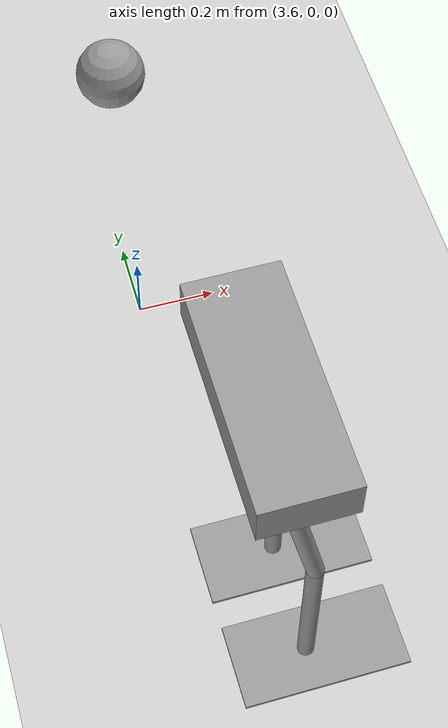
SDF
<sdf version="1.7">
 <world name="default">
  <model name="ground_plane">
   <static>1</static>
   <link name="link">
    <collision name="collision">
     <geometry><plane><normal>0 0 1</normal><size>100 100</size></plane></geometry>
     <surface>
      <contact><collide_bitmask>65535</collide_bitmask></contact>
      <friction><ode><mu>100</mu><mu2>50</mu2></ode></friction>
     </surface>
    </collision>
    <visual name="visual">
     <cast_shadows>0</cast_shadows>
     <geometry><plane><normal>0 0 1</normal><size>100 100</size></plane></geometry>
     <material>
      <script><uri>file://media/materials/scripts/gazebo.material</uri><name>Gazebo/Grey</name></script>
     </material>
    </visual>
   </link>
  </model>
  <model name="HumanoidRobot_clone">
   <link name="link_0">
    <inertial>
     <mass>1</mass>
     <inertia>
      <ixx>0.166667</ixx>
      <ixy>0</ixy>
      <ixz>0</ixz>
      <iyy>0.166667</iyy>
      <iyz>0</iyz>
      <izz>0.166667</izz>
     </inertia>
    </inertial>
    <pose>0.037224 0.016312 1 0 -0 0</pose>
    <visual name="visual">
     <geometry><box><size>0.2 0.5 0.1</size></box></geometry>
     <material>
      <lighting>1</lighting>
      <script><uri>file://media/materials/scripts/gazebo.material</uri><name>Gazebo/Grey</name></script>
      <shader type="pixel"><normal_map>__default__</normal_map></shader>
      <ambient>0.3 0.3 0.3 1</ambient>
      <diffuse>0.7 0.7 0.7 1</diffuse>
      <specular>0.01 0.01 0.01 1</specular>
      <emissive>0 0 0 1</emissive>
     </material>
    </visual>
    <collision name="collision">
     <geometry><box><size>0.2 0.5 0.1</size></box></geometry>
     <surface>
      <friction>
       <ode><mu>1</mu><mu2>1</mu2><fdir1>0 0 0</fdir1><slip1>0</slip1><slip2>0</slip2></ode>
       <torsional>
        <coefficient>1</coefficient>
        <patch_radius>0</patch_radius>
        <surface_radius>0</surface_radius>
        <use_patch_radius>1</use_patch_radius>
        <ode><slip>0</slip></ode>
       </torsional>
      </friction>
      <bounce><restitution_coefficient>0</restitution_coefficient><threshold>1e+06</threshold></bounce>
      <contact>
       <collide_without_contact>0</collide_without_contact>
       <collide_without_contact_bitmask>1</collide_without_contact_bitmask>
       <collide_bitmask>1</collide_bitmask>
       <ode>
        <soft_cfm>0</soft_cfm>
        <soft_erp>0.2</soft_erp>
        <kp>1e+13</kp>
        <kd>1</kd>
        <max_vel>0.01</max_vel>
        <min_depth>0</min_depth>
       </ode>
       <bullet>
        <split_impulse>1</split_impulse>
        <split_impulse_penetration_threshold>-0.01</split_impulse_penetration_threshold>
        <soft_cfm>0</soft_cfm>
        <soft_erp>0.2</soft_erp>
        <kp>1e+13</kp>
        <kd>1</kd>
       </bullet>
      </contact>
     </surface>
    </collision>
   </link>
   <link name="link_1">
    <inertial>
     <mass>1</mass>
     <inertia>
      <ixx>0.166667</ixx>
      <ixy>0</ixy>
      <ixz>0</ixz>
      <iyy>0.166667</iyy>
      <iyz>0</iyz>
      <izz>0.166667</izz>
     </inertia>
    </inertial>
    <pose>0.139866 -0.111553 0.00652 0 -0 0</pose>
    <visual name="visual">
     <geometry><box><size>0.4 0.2 0.009</size></box></geometry>
     <material>
      <lighting>1</lighting>
      <script><uri>file://media/materials/scripts/gazebo.material</uri><name>Gazebo/Grey</name></script>
      <shader type="pixel"><normal_map>__default__</normal_map></shader>
      <ambient>0.3 0.3 0.3 1</ambient>
      <diffuse>0.7 0.7 0.7 1</diffuse>
      <specular>0.01 0.01 0.01 1</specular>
      <emissive>0 0 0 1</emissive>
     </material>
    </visual>
    <collision name="collision">
     <geometry><box><size>0.4 0.2 0.009</size></box></geometry>
     <surface>
      <friction>
       <ode><mu>1</mu><mu2>1</mu2><fdir1>0 0 0</fdir1><slip1>0</slip1><slip2>0</slip2></ode>
       <torsional>
        <coefficient>1</coefficient>
        <patch_radius>0</patch_radius>
        <surface_radius>0</surface_radius>
        <use_patch_radius>1</use_patch_radius>
        <ode><slip>0</slip></ode>
       </torsional>
      </friction>
      <bounce><restitution_coefficient>0</restitution_coefficient><threshold>1e+06</threshold></bounce>
      <contact>
       <collide_without_contact>0</collide_without_contact>
       <collide_without_contact_bitmask>1</collide_without_contact_bitmask>
       <collide_bitmask>1</collide_bitmask>
       <ode>
        <soft_cfm>0</soft_cfm>
        <soft_erp>0.2</soft_erp>
        <kp>1e+13</kp>
        <kd>1</kd>
        <max_vel>0.01</max_vel>
        <min_depth>0</min_depth>
       </ode>
       <bullet>
        <split_impulse>1</split_impulse>
        <split_impulse_penetration_threshold>-0.01</split_impulse_penetration_threshold>
        <soft_cfm>0</soft_cfm>
        <soft_erp>0.2</soft_erp>
        <kp>1e+13</kp>
        <kd>1</kd>
       </bullet>
      </contact>
     </surface>
    </collision>
   </link>
   <link name="link_1_clone">
    <inertial>
     <mass>1</mass>
     <inertia>
      <ixx>0.166667</ixx>
      <ixy>0</ixy>
      <ixz>0</ixz>
      <iyy>0.166667</iyy>
      <iyz>0</iyz>
      <izz>0.166667</izz>
     </inertia>
    </inertial>
    <pose>0.137224 0.156083 0.00652 0 -0 0</pose>
    <visual name="visual">
     <geometry><box><size>0.4 0.2 0.009</size></box></geometry>
     <material>
      <lighting>1</lighting>
      <script><uri>file://media/materials/scripts/gazebo.material</uri><name>Gazebo/Grey</name></script>
      <shader type="pixel"><normal_map>__default__</normal_map></shader>
      <ambient>0.3 0.3 0.3 1</ambient>
      <diffuse>0.7 0.7 0.7 1</diffuse>
      <specular>0.01 0.01 0.01 1</specular>
      <emissive>0 0 0 1</emissive>
     </material>
    </visual>
    <collision name="collision">
     <geometry><box><size>0.4 0.2 0.009</size></box></geometry>
     <surface>
      <friction>
       <ode><mu>1</mu><mu2>1</mu2><fdir1>0 0 0</fdir1><slip1>0</slip1><slip2>0</slip2></ode>
       <torsional>
        <coefficient>1</coefficient>
        <patch_radius>0</patch_radius>
        <surface_radius>0</surface_radius>
        <use_patch_radius>1</use_patch_radius>
        <ode><slip>0</slip></ode>
       </torsional>
      </friction>
      <bounce><restitution_coefficient>0</restitution_coefficient><threshold>1e+06</threshold></bounce>
      <contact>
       <collide_without_contact>0</collide_without_contact>
       <collide_without_contact_bitmask>1</collide_without_contact_bitmask>
       <collide_bitmask>1</collide_bitmask>
       <ode>
        <soft_cfm>0</soft_cfm>
        <soft_erp>0.2</soft_erp>
        <kp>1e+13</kp>
        <kd>1</kd>
        <max_vel>0.01</max_vel>
        <min_depth>0</min_depth>
       </ode>
       <bullet>
        <split_impulse>1</split_impulse>
        <split_impulse_penetration_threshold>-0.01</split_impulse_penetration_threshold>
        <soft_cfm>0</soft_cfm>
        <soft_erp>0.2</soft_erp>
        <kp>1e+13</kp>
        <kd>1</kd>
       </bullet>
      </contact>
     </surface>
    </collision>
   </link>
   <link name="link_2">
    <inertial>
     <mass>1</mass>
     <inertia><ixx>0.145833</ixx><ixy>0</ixy><ixz>0</ixz><iyy>0.145833</iyy><iyz>0</iyz><izz>0.125</izz></inertia>
    </inertial>
    <pose>0.114643 -0.111553 0.22702 0 -0 0</pose>
    <visual name="visual">
     <geometry><cylinder><radius>0.02</radius><length>0.45</length></cylinder></geometry>
     <material>
      <lighting>1</lighting>
      <script><uri>file://media/materials/scripts/gazebo.material</uri><name>Gazebo/Grey</name></script>
      <shader type="pixel"><normal_map>__default__</normal_map></shader>
      <ambient>0.3 0.3 0.3 1</ambient>
      <diffuse>0.7 0.7 0.7 1</diffuse>
      <specular>0.01 0.01 0.01 1</specular>
      <emissive>0 0 0 1</emissive>
     </material>
    </visual>
    <collision name="collision">
     <geometry><cylinder><radius>0.02</radius><length>0.45</length></cylinder></geometry>
     <surface>
      <friction>
       <ode><mu>1</mu><mu2>1</mu2><fdir1>0 0 0</fdir1><slip1>0</slip1><slip2>0</slip2></ode>
       <torsional>
        <coefficient>1</coefficient>
        <patch_radius>0</patch_radius>
        <surface_radius>0</surface_radius>
        <use_patch_radius>1</use_patch_radius>
        <ode><slip>0</slip></ode>
       </torsional>
      </friction>
      <bounce><restitution_coefficient>0</restitution_coefficient><threshold>1e+06</threshold></bounce>
      <contact>
       <collide_without_contact>0</collide_without_contact>
       <collide_without_contact_bitmask>1</collide_without_contact_bitmask>
       <collide_bitmask>1</collide_bitmask>
       <ode>
        <soft_cfm>0</soft_cfm>
        <soft_erp>0.2</soft_erp>
        <kp>1e+13</kp>
        <kd>1</kd>
        <max_vel>0.01</max_vel>
        <min_depth>0</min_depth>
       </ode>
       <bullet>
        <split_impulse>1</split_impulse>
        <split_impulse_penetration_threshold>-0.01</split_impulse_penetration_threshold>
        <soft_cfm>0</soft_cfm>
        <soft_erp>0.2</soft_erp>
        <kp>1e+13</kp>
        <kd>1</kd>
       </bullet>
      </contact>
     </surface>
    </collision>
   </link>
   <link name="link_2_clone">
    <inertial>
     <mass>1</mass>
     <inertia><ixx>0.145833</ixx><ixy>0</ixy><ixz>0</ixz><iyy>0.145833</iyy><iyz>0</iyz><izz>0.125</izz></inertia>
    </inertial>
    <pose>0.064643 -0.113688 0.70101 0 -0 0</pose>
    <visual name="visual">
     <pose>0 0 0 0 -0.2 0</pose>
     <geometry><cylinder><radius>0.02</radius><length>0.5</length></cylinder></geometry>
     <material>
      <lighting>1</lighting>
      <script><uri>file://media/materials/scripts/gazebo.material</uri><name>Gazebo/Grey</name></script>
      <shader type="pixel"><normal_map>__default__</normal_map></shader>
      <ambient>0.3 0.3 0.3 1</ambient>
      <diffuse>0.7 0.7 0.7 1</diffuse>
      <specular>0.01 0.01 0.01 1</specular>
      <emissive>0 0 0 1</emissive>
     </material>
    </visual>
    <collision name="collision">
     <pose>0 0 0 0 -0.2 0</pose>
     <geometry><cylinder><radius>0.02</radius><length>0.5</length></cylinder></geometry>
     <surface>
      <friction>
       <ode><mu>1</mu><mu2>1</mu2><fdir1>0 0 0</fdir1><slip1>0</slip1><slip2>0</slip2></ode>
       <torsional>
        <coefficient>1</coefficient>
        <patch_radius>0</patch_radius>
        <surface_radius>0</surface_radius>
        <use_patch_radius>1</use_patch_radius>
        <ode><slip>0</slip></ode>
       </torsional>
      </friction>
      <bounce><restitution_coefficient>0</restitution_coefficient><threshold>1e+06</threshold></bounce>
      <contact>
       <collide_without_contact>0</collide_without_contact>
       <collide_without_contact_bitmask>1</collide_without_contact_bitmask>
       <collide_bitmask>1</collide_bitmask>
       <ode>
        <soft_cfm>0</soft_cfm>
        <soft_erp>0.2</soft_erp>
        <kp>1e+13</kp>
        <kd>1</kd>
        <max_vel>0.01</max_vel>
        <min_depth>0</min_depth>
       </ode>
       <bullet>
        <split_impulse>1</split_impulse>
        <split_impulse_penetration_threshold>-0.01</split_impulse_penetration_threshold>
        <soft_cfm>0</soft_cfm>
        <soft_erp>0.2</soft_erp>
        <kp>1e+13</kp>
        <kd>1</kd>
       </bullet>
      </contact>
     </surface>
    </collision>
   </link>
   <link name="link_2_clone_0">
    <inertial>
     <mass>1</mass>
     <inertia><ixx>0.145833</ixx><ixy>0</ixy><ixz>0</ixz><iyy>0.145833</iyy><iyz>0</iyz><izz>0.125</izz></inertia>
    </inertial>
    <pose>0.117224 0.156472 0.22702 0 -0 0</pose>
    <visual name="visual">
     <geometry><cylinder><radius>0.02</radius><length>0.45</length></cylinder></geometry>
     <material>
      <lighting>1</lighting>
      <script><uri>file://media/materials/scripts/gazebo.material</uri><name>Gazebo/Grey</name></script>
      <shader type="pixel"><normal_map>__default__</normal_map></shader>
      <ambient>0.3 0.3 0.3 1</ambient>
      <diffuse>0.7 0.7 0.7 1</diffuse>
      <specular>0.01 0.01 0.01 1</specular>
      <emissive>0 0 0 1</emissive>
     </material>
    </visual>
    <collision name="collision">
     <geometry><cylinder><radius>0.02</radius><length>0.45</length></cylinder></geometry>
     <surface>
      <friction>
       <ode><mu>1</mu><mu2>1</mu2><fdir1>0 0 0</fdir1><slip1>0</slip1><slip2>0</slip2></ode>
       <torsional>
        <coefficient>1</coefficient>
        <patch_radius>0</patch_radius>
        <surface_radius>0</surface_radius>
        <use_patch_radius>1</use_patch_radius>
        <ode><slip>0</slip></ode>
       </torsional>
      </friction>
      <bounce><restitution_coefficient>0</restitution_coefficient><threshold>1e+06</threshold></bounce>
      <contact>
       <collide_without_contact>0</collide_without_contact>
       <collide_without_contact_bitmask>1</collide_without_contact_bitmask>
       <collide_bitmask>1</collide_bitmask>
       <ode>
        <soft_cfm>0</soft_cfm>
        <soft_erp>0.2</soft_erp>
        <kp>1e+13</kp>
        <kd>1</kd>
        <max_vel>0.01</max_vel>
        <min_depth>0</min_depth>
       </ode>
       <bullet>
        <split_impulse>1</split_impulse>
        <split_impulse_penetration_threshold>-0.01</split_impulse_penetration_threshold>
        <soft_cfm>0</soft_cfm>
        <soft_erp>0.2</soft_erp>
        <kp>1e+13</kp>
        <kd>1</kd>
       </bullet>
      </contact>
     </surface>
    </collision>
   </link>
   <link name="link_2_clone_clone">
    <inertial>
     <mass>1</mass>
     <inertia><ixx>0.145833</ixx><ixy>0</ixy><ixz>0</ixz><iyy>0.145833</iyy><iyz>0</iyz><izz>0.125</izz></inertia>
    </inertial>
    <pose>0.067955 0.155472 0.70101 0 -0 0</pose>
    <visual name="visual">
     <pose>0 0 0 0 -0.2 0</pose>
     <geometry><cylinder><radius>0.02</radius><length>0.5</length></cylinder></geometry>
     <material>
      <lighting>1</lighting>
      <script><uri>file://media/materials/scripts/gazebo.material</uri><name>Gazebo/Grey</name></script>
      <shader type="pixel"><normal_map>__default__</normal_map></shader>
      <ambient>0.3 0.3 0.3 1</ambient>
      <diffuse>0.7 0.7 0.7 1</diffuse>
      <specular>0.01 0.01 0.01 1</specular>
      <emissive>0 0 0 1</emissive>
     </material>
    </visual>
    <collision name="collision">
     <pose>0 0 0 0 -0.2 0</pose>
     <geometry><cylinder><radius>0.02</radius><length>0.5</length></cylinder></geometry>
     <surface>
      <friction>
       <ode><mu>1</mu><mu2>1</mu2><fdir1>0 0 0</fdir1><slip1>0</slip1><slip2>0</slip2></ode>
       <torsional>
        <coefficient>1</coefficient>
        <patch_radius>0</patch_radius>
        <surface_radius>0</surface_radius>
        <use_patch_radius>1</use_patch_radius>
        <ode><slip>0</slip></ode>
       </torsional>
      </friction>
      <bounce><restitution_coefficient>0</restitution_coefficient><threshold>1e+06</threshold></bounce>
      <contact>
       <collide_without_contact>0</collide_without_contact>
       <collide_without_contact_bitmask>1</collide_without_contact_bitmask>
       <collide_bitmask>1</collide_bitmask>
       <ode>
        <soft_cfm>0</soft_cfm>
        <soft_erp>0.2</soft_erp>
        <kp>1e+13</kp>
        <kd>1</kd>
        <max_vel>0.01</max_vel>
        <min_depth>0</min_depth>
       </ode>
       <bullet>
        <split_impulse>1</split_impulse>
        <split_impulse_penetration_threshold>-0.01</split_impulse_penetration_threshold>
        <soft_cfm>0</soft_cfm>
        <soft_erp>0.2</soft_erp>
        <kp>1e+13</kp>
        <kd>1</kd>
       </bullet>
      </contact>
     </surface>
    </collision>
   </link>
   <joint name="link_0_JOINT_0" type="fixed">
    <parent>link_0</parent>
    <child>link_2_clone</child>
    <physics>
     <ode><limit><cfm>0</cfm><erp>0.2</erp></limit><suspension><cfm>0</cfm><erp>0.2</erp></suspension></ode>
    </physics>
   </joint>
   <joint name="link_0_JOINT_4" type="fixed">
    <parent>link_0</parent>
    <child>link_2_clone_clone</child>
    <physics>
     <ode><limit><cfm>0</cfm><erp>0.2</erp></limit><suspension><cfm>0</cfm><erp>0.2</erp></suspension></ode>
    </physics>
   </joint>
   <joint name="link_2_JOINT_3" type="fixed">
    <parent>link_2</parent>
    <child>link_1</child>
    <physics>
     <ode><limit><cfm>0</cfm><erp>0.2</erp></limit><suspension><cfm>0</cfm><erp>0.2</erp></suspension></ode>
    </physics>
   </joint>
   <joint name="link_2_clone_0_JOINT_6" type="fixed">
    <parent>link_2_clone_0</parent>
    <child>link_1_clone</child>
    <physics>
     <ode><limit><cfm>0</cfm><erp>0.2</erp></limit><suspension><cfm>0</cfm><erp>0.2</erp></suspension></ode>
    </physics>
   </joint>
   <joint name="link_2_clone_JOINT_2" type="fixed">
    <parent>link_2_clone</parent>
    <child>link_2</child>
    <pose>0 0 0.22 0 -0 0</pose>
    <physics>
     <ode><limit><cfm>0</cfm><erp>0.2</erp></limit><suspension><cfm>0</cfm><erp>0.2</erp></suspension></ode>
    </physics>
   </joint>
   <joint name="link_2_clone_clone_JOINT_5" type="fixed">
    <parent>link_2_clone_clone</parent>
    <child>link_2_clone_0</child>
    <pose>0 0 0.22 0 -0 0</pose>
    <physics>
     <ode><limit><cfm>0</cfm><erp>0.2</erp></limit><suspension><cfm>0</cfm><erp>0.2</erp></suspension></ode>
    </physics>
   </joint>
   <static>0</static>
   <pose>3.62416 -0.91817 -0.00202 3e-06 -1e-06 0.006888</pose>
  </model>
  <model name="my_ball">
   <link name="link_0">
    <inertial>
     <mass>1</mass>
     <inertia><ixx>0.1</ixx><ixy>0</ixy><ixz>0</ixz><iyy>0.1</iyy><iyz>0</iyz><izz>0.1</izz></inertia>
    </inertial>
    <visual name="visual">
     <geometry><sphere><radius>0.1</radius></sphere></geometry>
     <material>
      <lighting>1</lighting>
      <script><uri>file://media/materials/scripts/gazebo.material</uri><name>Gazebo/Grey</name></script>
      <shader type="pixel"><normal_map>__default__</normal_map></shader>
      <ambient>1 1 1 1</ambient>
      <diffuse>1 1 1 1</diffuse>
      <specular>1 1 1 1</specular>
      <emissive>1 1 1 1</emissive>
     </material>
    </visual>
    <collision name="collision">
     <geometry><sphere><radius>0.1</radius></sphere></geometry>
     <surface>
      <friction>
       <ode><mu>1</mu><mu2>1</mu2><fdir1>0 0 0</fdir1><slip1>0</slip1><slip2>0</slip2></ode>
       <torsional>
        <coefficient>1</coefficient>
        <patch_radius>0</patch_radius>
        <surface_radius>0</surface_radius>
        <use_patch_radius>1</use_patch_radius>
        <ode><slip>0</slip></ode>
       </torsional>
      </friction>
      <bounce><restitution_coefficient>0</restitution_coefficient><threshold>1e+06</threshold></bounce>
      <contact>
       <collide_without_contact>0</collide_without_contact>
       <collide_without_contact_bitmask>1</collide_without_contact_bitmask>
       <collide_bitmask>1</collide_bitmask>
       <ode>
        <soft_cfm>0</soft_cfm>
        <soft_erp>0.2</soft_erp>
        <kp>1e+13</kp>
        <kd>1</kd>
        <max_vel>0.01</max_vel>
        <min_depth>0</min_depth>
       </ode>
       <bullet>
        <split_impulse>1</split_impulse>
        <split_impulse_penetration_threshold>-0.01</split_impulse_penetration_threshold>
        <soft_cfm>0</soft_cfm>
        <soft_erp>0.2</soft_erp>
        <kp>1e+13</kp>
        <kd>1</kd>
       </bullet>
      </contact>
     </surface>
    </collision>
   </link>
   <static>0</static>
   <pose>3.70434 0.75179 0.1 0 -0 0</pose>
  </model>
 </world>
</sdf>
